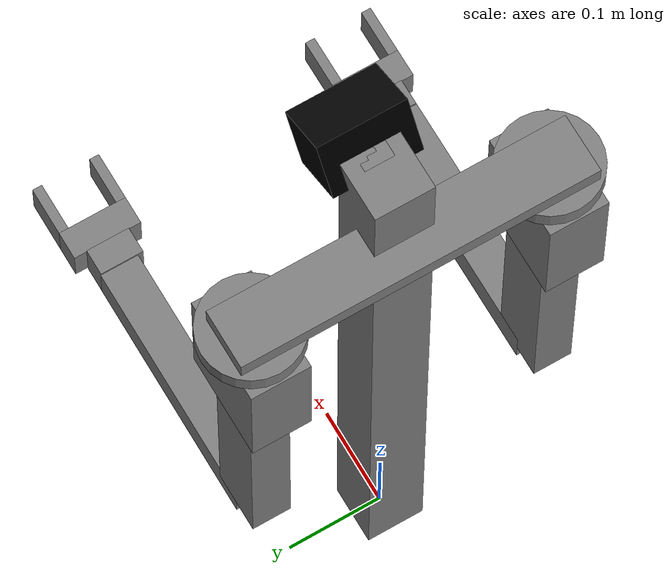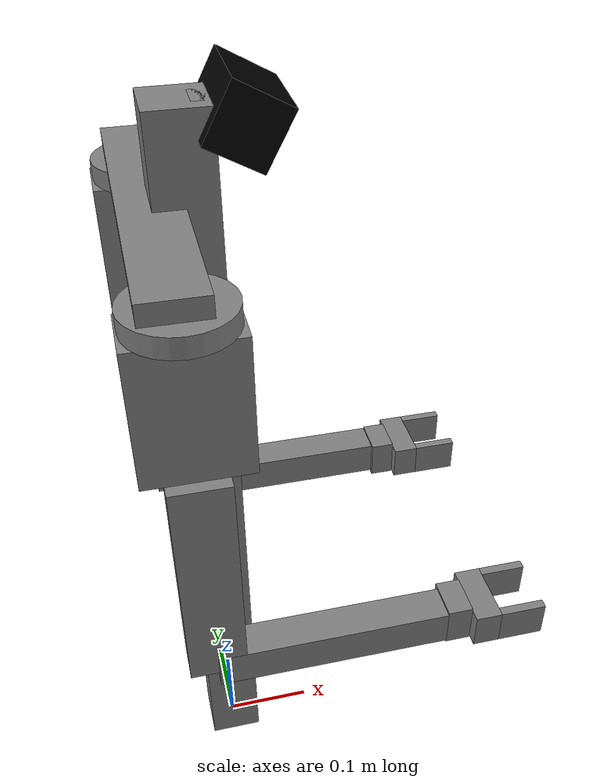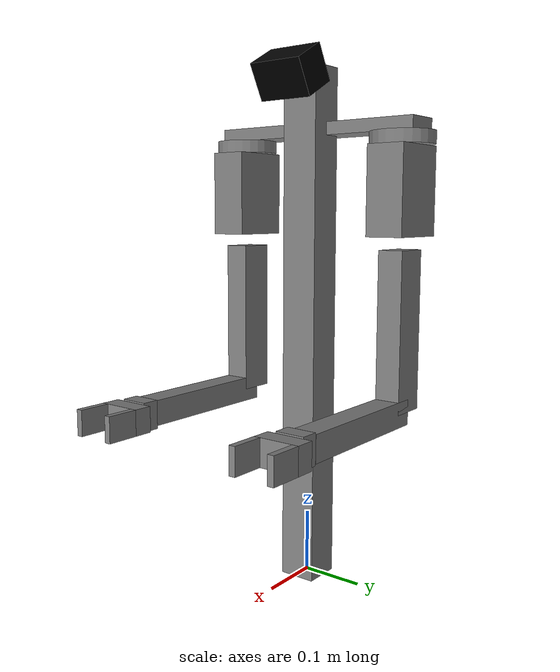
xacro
<?xml version="1.0" ?>
<robot name="amber_model4" xmlns:xacro="http://ros.org/wiki/xacro">

    <!-- import gazebo setting -->
    <xacro:include filename="$(find amber_description)/urdf/amber_model4.gazebo.xacro" />
    <!-- import materials -->
    <xacro:include filename="$(find amber_description)/urdf/amber_model4.materials.xacro" />
    <!-- import transmission -->
    <xacro:include filename="$(find amber_description)/urdf/amber_model4_sim.transmission.xacro" />
    <!-- import tree  -->
    <xacro:include filename="$(find amber_description)/urdf/amber_model4.prim.xacro" />

</robot>

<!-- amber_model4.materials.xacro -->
<robot name="hr4c">

  <material name="black">
    <color rgba="0.0 0.0 0.0 1.0"/>
  </material>

  <material name="white">
    <color rgba="1.0 1.0 1.0 1.0"/>
  </material>

  <material name="red">
    <color rgba="0.8 0.0 0.0 1.0"/>
  </material>

  <material name="blue">
    <color rgba="0.0 0.0 0.8 1.0"/>
  </material>

  <material name="green">
    <color rgba="0.0 0.8 0.0 1.0"/>
  </material>

  <material name="grey">
    <color rgba="0.5 0.5 0.5 1.0"/>
  </material>

  <material name="orange">
    <color rgba="${255/255} ${108/255} ${10/255} 1.0"/>
  </material>

  <material name="brown">
    <color rgba="${222/255} ${207/255} ${195/255} 1.0"/>
  </material>

</robot>

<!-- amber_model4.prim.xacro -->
<robot xmlns:xacro="http://ros.org/wiki/xacro">
    <xacro:property name="camera_angle" value="0.5" />

    <link name="world"/>
    <joint name="world_to_body" type="fixed" >
	<parent link="world" />
	<child link="body" />
    </joint>
    <!-- body to shoulders -->
    <link name="body" >
         <visual>
             <origin xyz="0 0 0.41" rpy="0 0 0"/>
             <geometry>
		       <box size="0.06 0.06 0.83" />
             </geometry>
             <material name="grey"/>
         </visual>
         <collision>
             <origin xyz="0 0 0.41" rpy="0 0 0"/>
             <geometry>
		       <box size="0.06 0.06 0.83" />
             </geometry>
             <material name="grey"/>
         </collision>
         <visual>
             <origin xyz="-0.03 0 0.73" rpy="0 0 0"/>
             <geometry>
		       <box size="0.06 0.36 0.02" />
             </geometry>
             <material name="grey"/>
         </visual>
         <collision>
             <origin xyz="-0.03 0 0.73" rpy="0 0 0"/>
             <geometry>
		       <box size="0.06 0.36 0.02" />
             </geometry>
             <material name="grey"/>
         </collision>
         <inertial>
           <origin xyz="0 0 0" />
           <mass value="14.4" />
	   <inertia ixx="0.9712" ixy="-2.221e-3" ixz="8.026e-2"
                    iyy="1.351" iyz="-1.594e-3" izz="0.5901" />
         </inertial>
    </link>

    <joint name="body_camera_mount" type="fixed">
      <parent link="body" />
      <child link="camera_mount" />
	  <origin xyz="0.03 0.0 0.81" rpy="0 0 0" />
    </joint>

    <link name="camera_mount" >
         <visual>
             <origin xyz="0 0 0" rpy="0.0 0.0 0.0"/>
             <geometry>
               <box size="0.035 0.03 0.03" />
             </geometry>
             <material name="grey"/>
         </visual>
         <collision>
             <origin xyz="0 0 0" rpy="0.0 0.0 0.0"/>
             <geometry>
               <box size="0.035 0.03 0.03" />
             </geometry>
             <material name="grey"/>
         </collision>
         <inertial>
           <origin xyz="0 0 0" />
           <mass value="0.252238" />
	       <inertia ixx="1e-3" ixy="0" ixz="0"
                    iyy="1e-3" iyz="0" izz="1e-3" />
         </inertial>
    </link>

    <joint name="camera_mount_to_camera" type="fixed">
      <parent link="camera_mount" />
      <child link="camera" />
	  <origin xyz="0.025 0.0 0.0" rpy="0 0 0" />
    </joint>

    <link name="camera" >
         <visual>
             <origin xyz="0 0 0" rpy="0.0 ${camera_angle} 0.0"/>
             <geometry>
               <box size="0.06 0.09 0.06" />
             </geometry>
             <material name="black"/>
         </visual>
         <collision>
             <origin xyz="0 0 0" rpy="0.0 ${camera_angle} 0.0"/>
             <geometry>
               <box size="0.06 0.09 0.06" />
             </geometry>
             <material name="black"/>
         </collision>
         <inertial>
           <origin xyz="0 0 0" />
           <mass value="0.1" />
	       <inertia ixx="1e-3" ixy="0" ixz="0"
                    iyy="1e-3" iyz="0" izz="1e-3" />
         </inertial>
    </link>

    <!-- manipulator -->
    <xacro:macro name="manipulator" params="side y_unit j1_lower j1_upper" >
        <joint name="${side}_shoulder" type="fixed">
            <parent link="body" />
            <child link="link1_${side}" />
	    <origin xyz="-0.025 ${y_unit*(-0.15)} 0.72" rpy="0 0 0" />
        </joint>
        <link name="link1_${side}">
            <visual>
                <origin xyz="0 0 -0.01" rpy="0 0 0"/>
                <geometry>
		    <cylinder radius="0.05" length="0.02" />
                </geometry>
                <material name="grey"/>
            </visual>
            <collision>
                <origin xyz="0 0 -0.01" rpy="0 0 0"/>
                <geometry>
		    <cylinder radius="0.05" length="0.02" />
                </geometry>
                <material name="grey"/>
            </collision>
            <inertial>
              <origin xyz="0 0 0" />
              <mass value="1.312" />
	      <inertia ixx="5.845e-04" ixy="${y_unit*0.0}" ixz="0.0"
                       iyy="5.845e-04" iyz="${y_unit*0.0}" izz="1.029e-3" />
            </inertial>
        </link>
	<joint name="j1_${side}" type="revolute">
            <parent link="link1_${side}" />
            <child link="link2_${side}" />
            <origin xyz="0 0 -0.02" rpy="0 0 0" />
            <axis xyz="0 0 1" />
            <limit velocity="${2.0*pi}" effort="40" lower="${j1_lower}" upper="${j1_upper}" />
        </joint>
        <link name="link2_${side}">
            <visual>
                <origin xyz="0 0 -0.06825" rpy="0 0 0"/>
                <geometry>
		    <box size="0.103 0.06 0.1365" />
                </geometry>
                <material name="grey"/>
            </visual>
            <collision>
                <origin xyz="0 0 -0.06825" rpy="0 0 0"/>
                <geometry>
		    <box size="0.103 0.06 0.1365" />
                </geometry>
                <material name="grey"/>
            </collision>
            <inertial>
              <origin xyz="0 0 0" />
              <mass value="3.469" />
	      <inertia ixx="3.72e-4" ixy="${(-5.972e-5)*y_unit}" ixz="-1.428e-3"
		  iyy="3.2715e-2" iyz="${(-3.908e-3)*y_unit}" izz="7.535e-3" />
            </inertial>
        </link>
        <joint name="j2_${side}" type="revolute">
            <parent link="link2_${side}" />
            <child link="link3_${side}" />
            <origin xyz="0 0 -0.1565" rpy="0 0 0" />
            <axis xyz="0 1 0" />
            <limit velocity="${2.0*pi}" effort="20" lower="${-0.222*pi}" upper="${0.277*pi}" />
        </joint>
        <link name="link3_${side}">
            <visual>
                <origin xyz="0 0 -0.125" rpy="0 0 0"/>
                <geometry>
		    <box size="0.06 0.04 0.25" />
                </geometry>
                <material name="grey"/>
            </visual>
            <collision>
                <origin xyz="0 0 -0.125" rpy="0 0 0"/>
                <geometry>
		    <box size="0.06 0.04 0.25" />
                </geometry>
                <material name="grey"/>
            </collision>
            <inertial>
              <origin xyz="0 0 0" />
              <mass value="2.010" />
	      <inertia ixx="2.265e-2" ixy="${y_unit*5.836e-4}" ixz="4.07e-4"
                       iyy="2.329e-2" iyz="${y_unit*5.202e-4}" izz="1.054e-3" />
            </inertial>
        </link>
        <joint name="j3_${side}" type="revolute">
            <parent link="link3_${side}" />
            <child link="link4_${side}" />
            <origin xyz="0 0 -0.25" rpy="0 1.57 0" />
            <axis xyz="0 1 0" />
            <limit velocity="${2.0*pi}" effort="20" lower="${-1.57 - 0.333*pi}" upper="${-1.57 + 0.333*pi}" />
        </joint>
        <link name="link4_${side}">
            <visual>
                <origin xyz="0.125 0 0" rpy="0 0 0"/>
                <geometry>
		    <box size="0.25 0.04 0.04" />
                </geometry>
                <material name="grey"/>
            </visual>
            <collision>
                <origin xyz="0.125 0 0" rpy="0 0 0"/>
                <geometry>
		    <box size="0.25 0.04 0.04" />
                </geometry>
                <material name="grey"/>
            </collision>
            <inertial>
              <origin xyz="0 0 0" />
              <mass value="0.7647" />
	      <inertia ixx="1.9e-4" ixy="${(-1.417e-4)*y_unit}" ixz="2.745e-5"
		  iyy="3.171e-2" iyz="${(1.1e-9)*y_unit}" izz="3.171e-2" />
            </inertial>
        </link>
        <joint name="j4_${side}" type="revolute">
            <parent link="link4_${side}" />
            <child link="link5_${side}" />
            <origin xyz="0.250 0 0" rpy="0 0 0" />
            <axis xyz="0 1 0" />
            <limit velocity="${2.0*pi}" effort="20" lower="${-0.5*pi}" upper="${0.5*pi}" />
        </joint>
        <link name="link5_${side}">
            <visual>
		<origin xyz="0.0135 ${y_unit*0.003} 0" rpy="0 0 0"/>
                <geometry>
		    <box size="0.027 0.045 0.045" />
                </geometry>
                <material name="grey"/>
            </visual>
            <collision>
		<origin xyz="0.0135 ${y_unit*0.003} 0" rpy="0 0 0"/>
                <geometry>
		    <box size="0.027 0.045 0.045" />
                </geometry>
                <material name="grey"/>
            </collision>
            <inertial>
              <origin xyz="0 0 0" />
              <mass value="0.5808" />
	      <inertia ixx="1.693e-5" ixy="${-7.726e-4*y_unit}" ixz="3.695e-9"
		  iyy="1.985e-3" iyz="${(-4.345e-10)*y_unit}" izz="2.035e-3" />
            </inertial>
        </link>
        <joint name="j5_${side}" type="revolute">
            <parent link="link5_${side}" />
	    <child link="hand_${side}" />
	    <origin xyz="0.027 ${y_unit*0.003} 0" rpy="0 0 0" />
            <axis xyz="1 0 0" />
            <limit velocity="${2.0*pi}" effort="20" lower="${-1.0*pi}" upper="${1.0*pi}" />
        </joint>
	<link name="hand_${side}">
            <visual>
                <origin xyz="0.0145 0 0" rpy="0 0 0"/>
                <geometry>
		    <box size="0.029 0.071 0.04" />
                </geometry>
                <material name="grey"/>
            </visual>
            <collision>
                <origin xyz="0.04 ${y_unit*(-0.0175)} 0" rpy="0 0 0"/>
                <geometry>
		    <box size="0.029 0.071 0.04" />
                </geometry>
                <material name="grey"/>
            </collision>
            <inertial>
              <origin xyz="0 0 0" />
              <mass value="0.4628" />
	      <inertia ixx="1.549e-4" ixy="${(3.04e-5)*y_unit}" ixz="2.771e-6"
		  iyy="3.529e-4" iyz="${(-4.112e-6)*y_unit}" izz="4.07e-4" />
            </inertial>
        </link>
        <joint name="j6_${side}_a" type="revolute">
            <parent link="hand_${side}" />
	    <child link="tip_${side}_a" />
	    <origin xyz="0.029 -0.0305 0" rpy="0 0 0" />
            <axis xyz="0 0 1" />
            <limit velocity="${2.0*pi}" effort="20" lower="${-0.5*pi}" upper="${0.166*pi}" />
        </joint>
	<link name="tip_${side}_a">
            <visual>
                <origin xyz="0.025 0 0" rpy="0 0 0"/>
                <geometry>
		    <box size="0.05 0.01 0.04" />
                </geometry>
                <material name="grey"/>
            </visual>
            <collision>
                <origin xyz="0.025 0 0" rpy="0 0 0"/>
                <geometry>
		    <box size="0.05 0.01 0.04" />
                </geometry>
                <material name="grey"/>
            </collision>
            <inertial>
              <origin xyz="0 0 0" />
              <mass value="0.0897" />
	      <inertia ixx="2.79e-5" ixy="${(-1.58e-10)*y_unit}" ixz="1.84e-7"
		  iyy="2.138e-4" iyz="0.0" izz="1.883e-4" />
            </inertial>
        </link>
        <joint name="j6_${side}_b" type="revolute">
            <parent link="hand_${side}" />
	    <child link="tip_${side}_b" />
	    <origin xyz="0.029 0.0305 0" rpy="${pi} 0 0" />
            <axis xyz="0 0 1" />
            <limit velocity="${2.0*pi}" effort="20" lower="${-0.5*pi}" upper="${0.166*pi}" />
        </joint>
	<link name="tip_${side}_b">
            <visual>
                <origin xyz="0.025 0 0" rpy="0 0 0"/>
                <geometry>
		    <box size="0.05 0.01 0.04" />
                </geometry>
                <material name="grey"/>
            </visual>
            <collision>
                <origin xyz="0.025 0 0" rpy="0 0 0"/>
                <geometry>
		    <box size="0.05 0.01 0.04" />
                </geometry>
                <material name="grey"/>
            </collision>
            <inertial>
              <origin xyz="0 0 0" />
              <mass value="0.0897" />
	      <inertia ixx="2.79e-5" ixy="${(-1.58e-10)*y_unit}" ixz="1.84e-7"
		  iyy="2.138e-4" iyz="0.0" izz="1.883e-4" />
            </inertial>
        </link>
    </xacro:macro>

    <xacro:manipulator side="right" y_unit="1.0" j1_lower="${-0.666*pi}" j1_upper="${0.277*pi}" />
    <xacro:manipulator side="left" y_unit="-1.0" j1_lower="${-0.277*pi}" j1_upper="${0.666*pi}" />

</robot>
